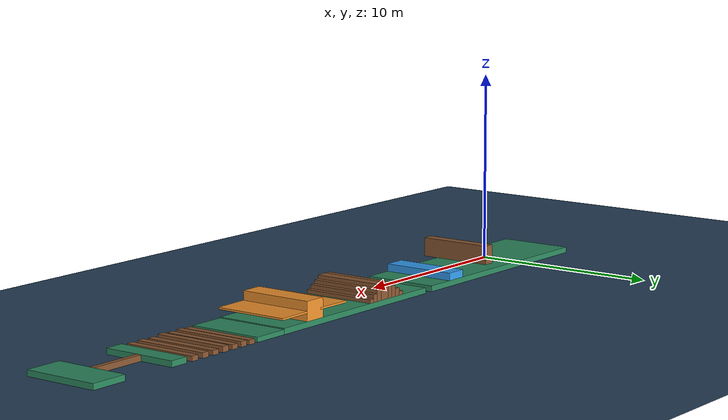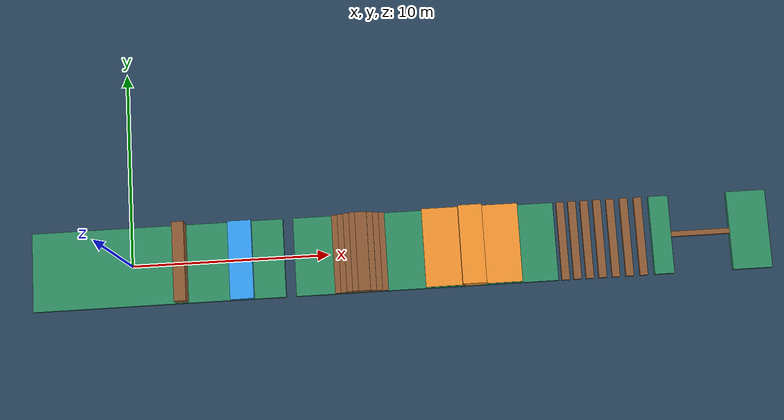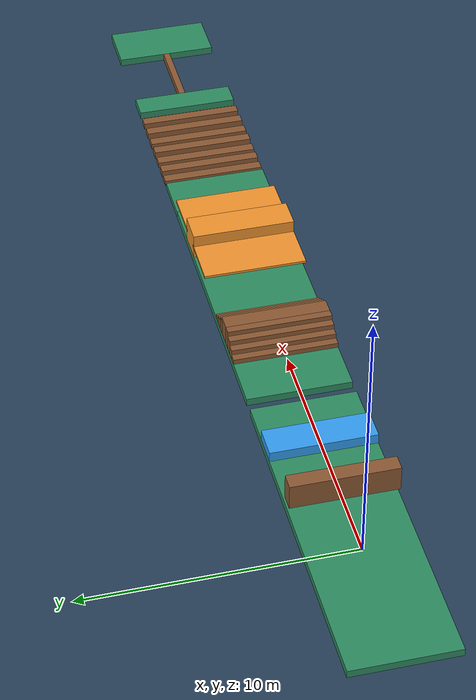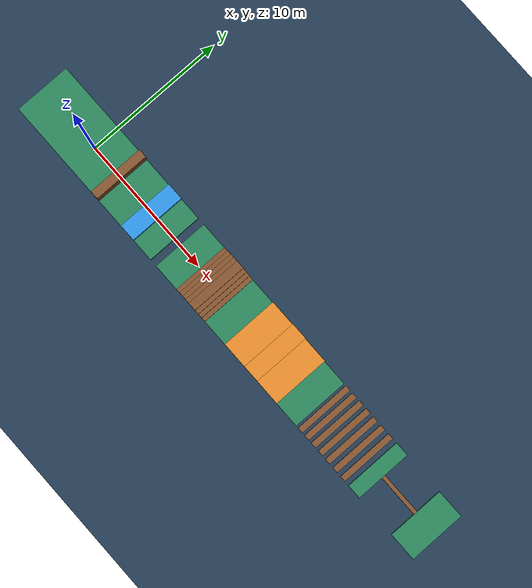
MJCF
<mujoco model="empty_world">
  <statistic center="0 0 0.1" extent="0.8"/>

  <visual>
    <headlight diffuse="0.6 0.6 0.6" ambient="0.3 0.3 0.3" specular="0 0 0"/>
    <rgba haze="0.15 0.25 0.35 1"/>
    <global azimuth="-130" elevation="-20"/>
  </visual>

  <asset>
    <texture type="skybox" builtin="gradient" rgb1="0.3 0.5 0.7" rgb2="0 0 0" width="512" height="3072"/>
    <texture type="2d" name="groundplane" builtin="checker" mark="edge" rgb1="0.2 0.3 0.4" rgb2="0.1 0.2 0.3"
      markrgb="0.8 0.8 0.8" width="300" height="300"/>
    <material name="groundplane" texture="groundplane" texuniform="true" texrepeat="5 5" reflectance="0.2"/>
    <texture type="2d" name="wood_tex" builtin="flat" rgb1="0.55 0.35 0.2" width="512" height="512"/>
    <material name="wood_mat" texture="wood_tex" specular="0.2" shininess="0.1" rgba="1 1 1 1"/>
    <material name="runway_mat" rgba="0.18 0.55 0.38 1" specular="0.15" shininess="0.2"/>
  </asset>

  <worldbody>
    <light pos="0 0 1.5" dir="0 0 -1" directional="true"/>

    <!-- 无限底面在 z=-0.30；上方 30 cm 高跑道在 x=[7.8, 8.2] 留出 0.4 m gap。 -->
    <geom name="floor" type="plane" pos="0 0 -0.30" size="0 0 0.05" material="groundplane"/>
    <geom name="ground_before_gap" type="box" pos="1.3 0 -0.15" size="6.4 2.0 0.15" material="runway_mat"/>
    <geom name="ground_after_gap" type="box" pos="13.9 0 -0.15" size="5.675 2.0 0.15" material="runway_mat"/>

    <!-- 1. 匍匐障碍：x=[2.0, 3.0]，顶障下表面离地 0.30 m。 -->
    <geom name="crawl_overhead" type="box" pos="2.5 0 0.8" size="0.3 2.0 0.50" material="wood_mat"/>

    <!-- 2. 高台：x=[4.9, 6.1]，台面高度 0.40 m。 -->
    <geom name="platform_40cm" type="box" pos="5.5 0 0.20" size="0.6 2.0 0.20" rgba="0.20 0.62 0.95 1"/>

    <!-- 3. 0.4 m gap 位于 x=[7.8, 8.2]。 -->

    <!-- 4. 上下楼梯：单级长度 0.30 m、高度 0.20 m，最高 0.80 m。 -->
    <geom name="stair_up_1" type="box" pos="10.350 0 0.10" size="0.150 2.0 0.10" material="wood_mat"/>
    <geom name="stair_up_2" type="box" pos="10.650 0 0.20" size="0.150 2.0 0.20" material="wood_mat"/>
    <geom name="stair_up_3" type="box" pos="10.950 0 0.30" size="0.150 2.0 0.30" material="wood_mat"/>
    <geom name="stair_up_4" type="box" pos="11.250 0 0.40" size="0.150 2.0 0.40" material="wood_mat"/>
    <geom name="stair_top" type="box" pos="11.700 0 0.40" size="0.300 2.0 0.40" material="wood_mat"/>
    <geom name="stair_down_3" type="box" pos="12.150 0 0.30" size="0.150 2.0 0.30" material="wood_mat"/>
    <geom name="stair_down_2" type="box" pos="12.450 0 0.20" size="0.150 2.0 0.20" material="wood_mat"/>
    <geom name="stair_down_1" type="box" pos="12.750 0 0.10" size="0.150 2.0 0.10" material="wood_mat"/>

    <!-- 5. 30° 上下斜坡，中间平台高度约 1.00 m。 -->
    <geom name="slope_up" type="box" pos="15.800 0 0.457" size="1.0 2.0 0.05" euler="0 -0.523599 0" rgba="0.95 0.58 0.18 1"/>
    <geom name="slope_top" type="box" pos="17.241 0 0.500" size="0.60 2.0 0.500" rgba="0.95 0.58 0.18 1"/>
    <geom name="slope_down" type="box" pos="18.682 0 0.457" size="1.0 2.0 0.05" euler="0 0.523599 0" rgba="0.95 0.58 0.18 1"/>

    <!-- 6. 连续 gap：初始平台长 2.0 m，7 个踏板长 0.4 m，末端平台长 1.0 m。 -->
    <!-- 8 个 gap 依次为 0.18、0.20、0.23、0.25、0.28、0.30、0.32、0.35 m。 -->
    <geom name="continuous_gap_start" type="box" pos="20.550 0 -0.175" size="1.000 2.0 0.125" material="runway_mat"/>
    <geom name="continuous_gap_platform_1" type="box" pos="21.930 0 -0.190" size="0.200 2.0 0.110" material="wood_mat"/>
    <geom name="continuous_gap_platform_2" type="box" pos="22.530 0 -0.165" size="0.200 2.0 0.135" material="wood_mat"/>
    <geom name="continuous_gap_platform_3" type="box" pos="23.160 0 -0.180" size="0.200 2.0 0.120" material="wood_mat"/>
    <geom name="continuous_gap_platform_4" type="box" pos="23.810 0 -0.155" size="0.200 2.0 0.145" material="wood_mat"/>
    <geom name="continuous_gap_platform_5" type="box" pos="24.490 0 -0.185" size="0.200 2.0 0.115" material="wood_mat"/>
    <geom name="continuous_gap_platform_6" type="box" pos="25.190 0 -0.170" size="0.200 2.0 0.130" material="wood_mat"/>
    <geom name="continuous_gap_platform_7" type="box" pos="25.910 0 -0.175" size="0.200 2.0 0.125" material="wood_mat"/>
    <geom name="continuous_gap_end" type="box" pos="26.960 0 -0.150" size="0.500 2.0 0.150" material="runway_mat"/>

    <!-- 7. 独木桥：x=[27.46, 30.46]，长 3.0 m、宽 0.28 m，桥面高度 0.30 m。 -->
    <geom name="balance_beam" type="box" pos="28.960 0 -0.150" size="1.500 0.130 0.150" material="wood_mat"/>
    <!-- 独木桥后平台：x=[30.46, 32.46]，长 2.0 m。 -->
    <geom name="balance_beam_end" type="box" pos="31.460 0 -0.150" size="1.000 2.000 0.150" material="runway_mat"/>

  </worldbody>
</mujoco>
